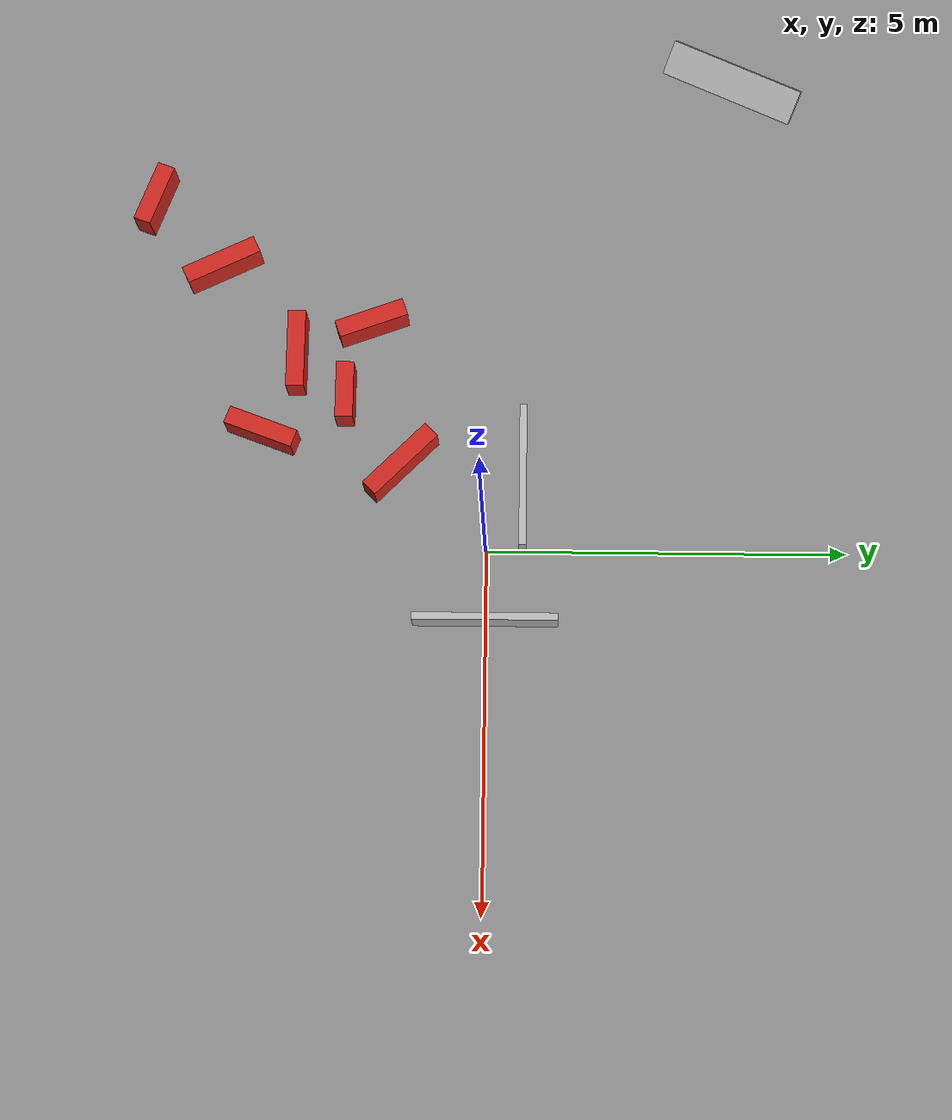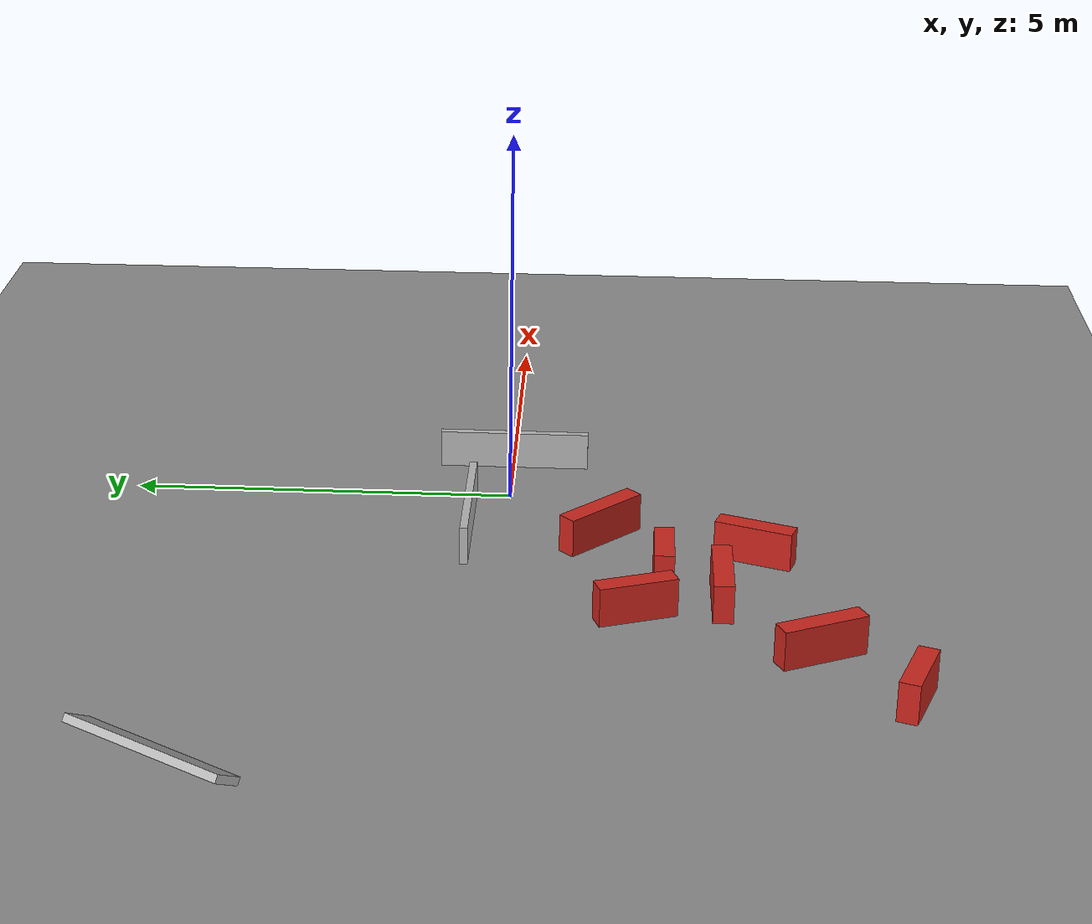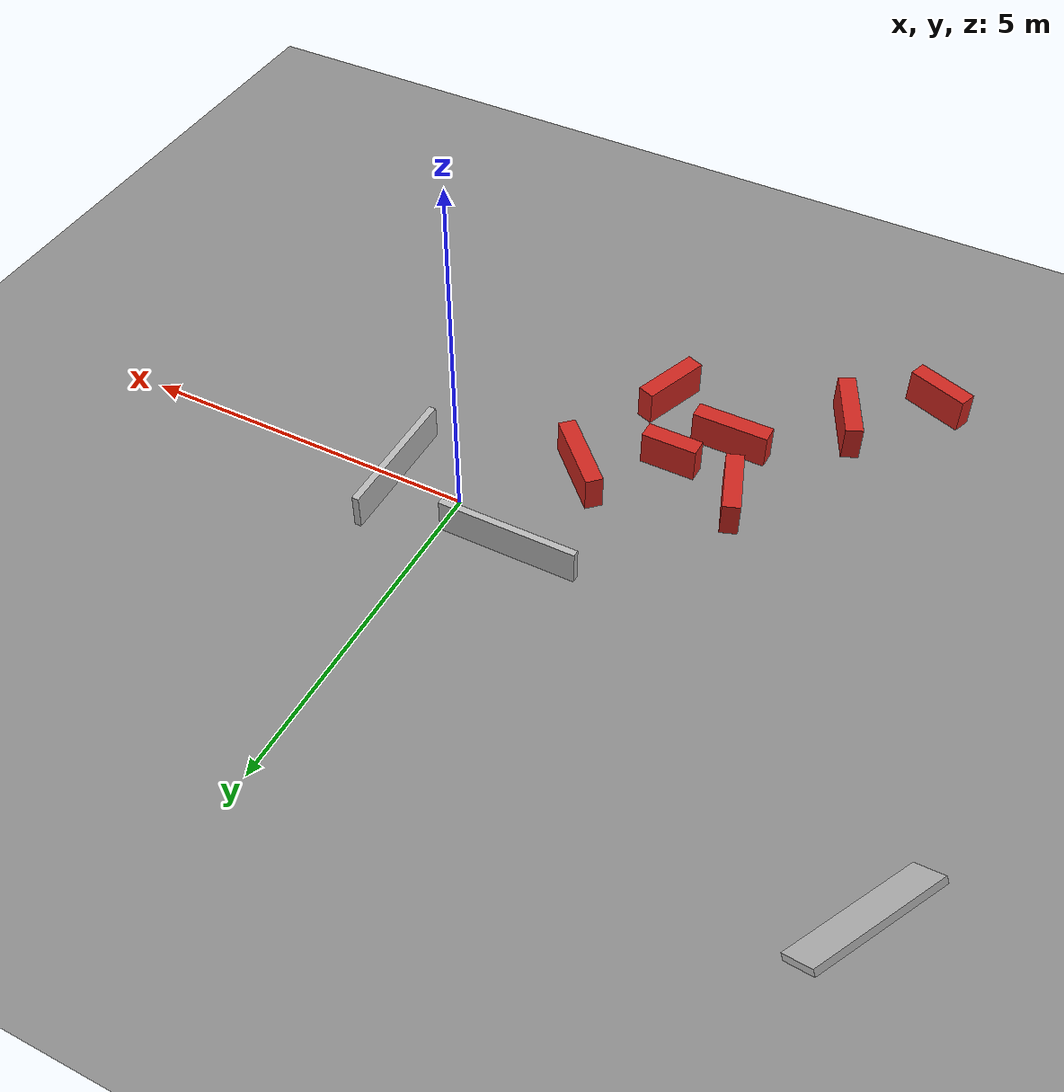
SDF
<?xml version="1.0"?>
<sdf version="1.9">
  <world name="mini_maze">
    <plugin filename="gz-sim-physics-system" name="gz::sim::systems::Physics"/>
    <plugin filename="gz-sim-user-commands-system" name="gz::sim::systems::UserCommands"/>
    <plugin filename="gz-sim-scene-broadcaster-system" name="gz::sim::systems::SceneBroadcaster"/>
    <plugin filename="gz-sim-sensors-system" name="gz::sim::systems::Sensors">
      <render_engine>ogre2</render_engine>
    </plugin>

    <light name="sun" type="directional">
      <cast_shadows>true</cast_shadows>
      <pose>0 0 10 0 0 0</pose>
      <diffuse>0.8 0.8 0.8 1</diffuse>
      <specular>0.2 0.2 0.2 1</specular>
      <direction>-0.5 0.1 -0.9</direction>
    </light>

    <model name="ground_plane">
      <static>true</static>
      <link name="link">
        <collision name="collision">
          <geometry>
            <plane>
              <normal>0 0 1</normal>
              <size>40 40</size>
            </plane>
          </geometry>
        </collision>
        <visual name="visual">
          <geometry>
            <plane>
              <normal>0 0 1</normal>
              <size>40 40</size>
            </plane>
          </geometry>
          <material>
            <ambient>0.35 0.35 0.35 1</ambient>
            <diffuse>0.55 0.55 0.55 1</diffuse>
          </material>
        </visual>
      </link>
    </model>

    <model name="maze_wall_1">
      <static>true</static>
      <pose>1.0 0 0.25 0 0 0</pose>
      <link name="link">
        <collision name="collision">
          <geometry><box><size>0.1 2.0 0.5</size></box></geometry>
        </collision>
        <visual name="visual">
          <geometry><box><size>0.1 2.0 0.5</size></box></geometry>
        </visual>
      </link>
    </model>

    <model name="maze_wall_2">
      <static>true</static>
      <pose>-1.0 0.5 0.25 0 0 1.5708</pose>
      <link name="link">
        <collision name="collision">
          <geometry><box><size>0.1 2.0 0.5</size></box></geometry>
        </collision>
        <visual name="visual">
          <geometry><box><size>0.1 2.0 0.5</size></box></geometry>
        </visual>
      </link>
    </model>

    <model name="maze_wall_3">
      <static>true</static>
      <pose>-7.0 3.5 0.25 3 1 2.5708</pose>
      <link name="link">
        <collision name="collision">
          <geometry><box><size>0.1 2.0 0.5</size></box></geometry>
        </collision>
        <visual name="visual">
          <geometry><box><size>0.1 2.0 0.5</size></box></geometry>
        </visual>
      </link>
    </model>
    <model name="test_block_on_goal_path_1">
      <static>true</static>
      <pose>-1.2 -1.2 0.25 0 0 0.7854</pose>
      <link name="link">
        <collision name="collision">
          <geometry><box><size>0.25 1.2 0.5</size></box></geometry>
        </collision>
        <visual name="visual">
          <geometry><box><size>0.25 1.2 0.5</size></box></geometry>
          <material>
            <ambient>0.8 0.15 0.12 1</ambient>
            <diffuse>0.8 0.15 0.12 1</diffuse>
          </material>
        </visual>
      </link>
    </model>

    <model name="test_block_on_goal_path_2">
      <static>true</static>
      <pose>-2.2 -2.0 0.25 0 0 0</pose>
      <link name="link">
        <collision name="collision">
          <geometry><box><size>0.8 0.25 0.5</size></box></geometry>
        </collision>
        <visual name="visual">
          <geometry><box><size>0.8 0.25 0.5</size></box></geometry>
          <material>
            <ambient>0.8 0.15 0.12 1</ambient>
            <diffuse>0.8 0.15 0.12 1</diffuse>
          </material>
        </visual>
      </link>
    </model>
    <model name="test_block_on_goal_path_3">
      <static>true</static>
      <pose>-2.8 -2.7 0.25 0 0 1.5708</pose>
      <link name="link">
        <collision name="collision">
          <geometry><box><size>0.25 1.1 0.5</size></box></geometry>
        </collision>
        <visual name="visual">
          <geometry><box><size>0.25 1.1 0.5</size></box></geometry>
          <material>
            <ambient>0.8 0.15 0.12 1</ambient>
            <diffuse>0.8 0.15 0.12 1</diffuse>
          </material>
        </visual>
      </link>
    </model>

    <model name="test_block_on_goal_path_4">
      <static>true</static>
      <pose>-3.25 -1.65 0.25 0 0 0.35</pose>
      <link name="link">
        <collision name="collision">
          <geometry><box><size>0.25 1.0 0.5</size></box></geometry>
        </collision>
        <visual name="visual">
          <geometry><box><size>0.25 1.0 0.5</size></box></geometry>
          <material>
            <ambient>0.8 0.15 0.12 1</ambient>
            <diffuse>0.8 0.15 0.12 1</diffuse>
          </material>
        </visual>
      </link>
    </model>

    <model name="test_block_on_goal_path_5">
      <static>true</static>
      <pose>-1.65 -3.15 0.25 0 0 -0.35</pose>
      <link name="link">
        <collision name="collision">
          <geometry><box><size>0.25 1.0 0.5</size></box></geometry>
        </collision>
        <visual name="visual">
          <geometry><box><size>0.25 1.0 0.5</size></box></geometry>
          <material>
            <ambient>0.8 0.15 0.12 1</ambient>
            <diffuse>0.8 0.15 0.12 1</diffuse>
          </material>
        </visual>
      </link>
    </model>

    <model name="test_block_on_goal_path_6">
      <static>true</static>
      <pose>-4.1 -3.8 0.25 0 0 0.45</pose>
      <link name="link">
        <collision name="collision">
          <geometry><box><size>0.25 1.1 0.5</size></box></geometry>
        </collision>
        <visual name="visual">
          <geometry><box><size>0.25 1.1 0.5</size></box></geometry>
          <material>
            <ambient>0.8 0.15 0.12 1</ambient>
            <diffuse>0.8 0.15 0.12 1</diffuse>
          </material>
        </visual>
      </link>
    </model>

    <model name="test_block_on_goal_path_7">
      <static>true</static>
      <pose>-5.1 -4.8 0.25 0 0 -0.35</pose>
      <link name="link">
        <collision name="collision">
          <geometry><box><size>0.9 0.25 0.5</size></box></geometry>
        </collision>
        <visual name="visual">
          <geometry><box><size>0.9 0.25 0.5</size></box></geometry>
          <material>
            <ambient>0.8 0.15 0.12 1</ambient>
            <diffuse>0.8 0.15 0.12 1</diffuse>
          </material>
        </visual>
      </link>
    </model>
  </world>
</sdf>
